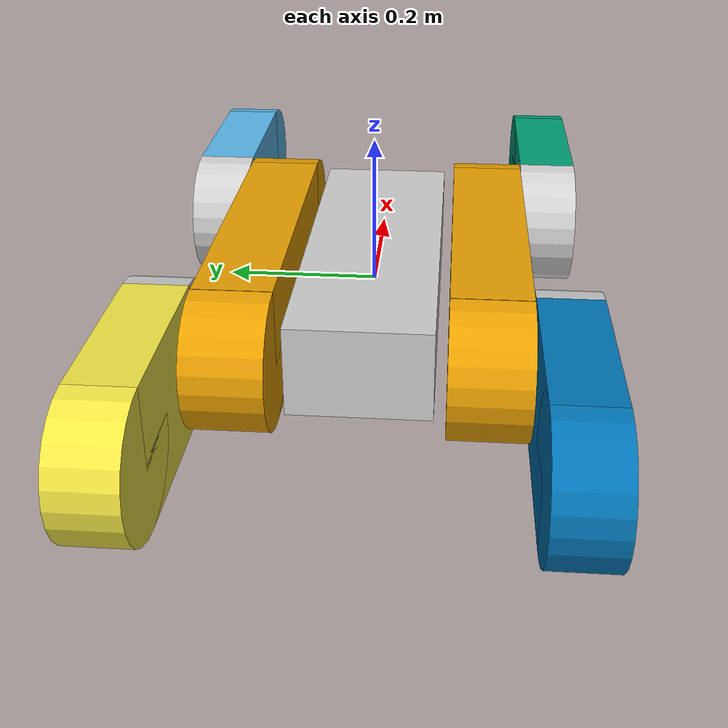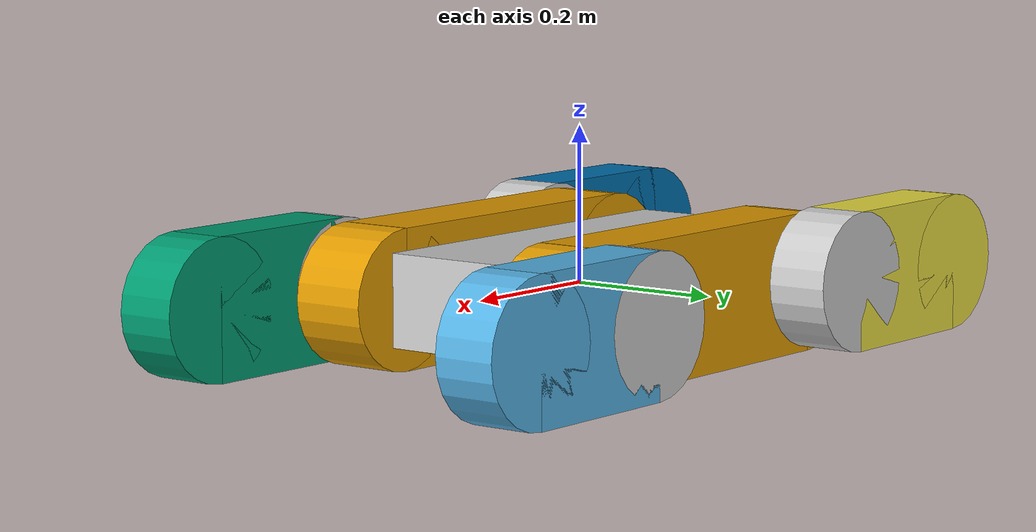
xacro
<?xml version="1.0"?>

<robot name="obelix_ugv" xmlns:xacro="http://ros.org/wiki/xacro">

  <!-- Included URDF Files -->
  <xacro:include filename="$(find hector_tracked_vehicles_description)/urdf/obelix_ugv_base.urdf.xacro" />
  <xacro:obelix_ugv_macro />

  <xacro:include filename="$(find hector_tracked_vehicles_description)/urdf/obelix_2flipper_box.urdf.xacro" />
  <!-- use for 2*2 flippers -->
  <xacro:obelix_flipper_macro parent="base_link" name="front" front="1">
    <origin xyz="${wheel_offset_x}  ${flipper_offset_y}  0 " rpy="0 0 0"/>
  </xacro:obelix_flipper_macro >

  <xacro:obelix_flipper_macro parent="base_link" name="rear" front="-1">
    <origin xyz="${-wheel_offset_x}  ${flipper_offset_y}  0  " rpy="0 0 0"/>
  </xacro:obelix_flipper_macro >

  <gazebo reference="base_link">
    <mu1>0.0</mu1>
    <mu2>0.0</mu2>
    <kp>1000000.0</kp>
    <kd>100.0</kd>
    <minDepth>0.001</minDepth>
    <maxVel>1.0</maxVel>
  </gazebo>

  <gazebo>
    <plugin name="force_based_move_controller" filename="libgazebo_ros_force_based_move.so">
      <commandTopic>/cmd_vel_raw</commandTopic>
      <odometryTopic>odom_raw</odometryTopic>
      <odometryFrame>odom</odometryFrame>
      <odometryRate>20.0</odometryRate>
      <robotBaseFrame>base_link</robotBaseFrame>
      <publishOdometryTf>0</publishOdometryTf>
      <yaw_velocity_p_gain>4000.0</yaw_velocity_p_gain>
      <x_velocity_p_gain>10000.0</x_velocity_p_gain>
      <y_velocity_p_gain>10000.0</y_velocity_p_gain>
    </plugin>

    <!-- ros_control plugin -->
    <plugin name="gazebo_ros_control" filename="libgazebo_ros_control.so">
      <robotNamespace>obelix_robot</robotNamespace>
    </plugin>

    <plugin name="p3d_base_controller" filename="libgazebo_ros_p3d.so">
      <alwaysOn>true</alwaysOn>
      <updateRate>50.0</updateRate>
      <bodyName>base_link</bodyName>
      <topicName>ground_truth/state</topicName>
      <gaussianNoise>0.01</gaussianNoise>
      <frameName>world</frameName>
      <xyzOffsets>0 0 0</xyzOffsets>
      <rpyOffsets>0 0 0</rpyOffsets>
    </plugin>

    <plugin name="imu_controller" filename="libhector_gazebo_ros_imu.so">
      <alwaysOn>true</alwaysOn>
      <updateRate>50.0</updateRate>
      <bodyName>base_link</bodyName>
      <topicName>imu_quat</topicName>
      <accelDrift>0.0 0.0 0.0</accelDrift>
      <accelGaussianNoise>0.1 0.1 0.1</accelGaussianNoise>
      <rateDrift>0.0 0.0 0.0</rateDrift>
      <rateGaussianNoise>0.05 0.05 0.05</rateGaussianNoise>
      <headingDrift>0.0</headingDrift>
      <headingGaussianNoise>0.05</headingGaussianNoise>
    </plugin>
  </gazebo>

</robot>

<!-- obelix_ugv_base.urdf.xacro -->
<robot xmlns:xacro="http://ros.org/wiki/xacro">

  <xacro:include filename="$(find hector_xacro_tools)/urdf/inertia_tensors.urdf.xacro" />
  <xacro:include filename="$(find hector_tracked_vehicles_description)/urdf/tracked_wheel.urdf.xacro" />

  <!-- Properties (Constants) -->
  <xacro:property name="M_PI" value="3.14159"/>

  <xacro:property name="base_link_size_x" value="0.52" />
  <xacro:property name="base_link_size_y" value="0.18" />
  <xacro:property name="base_link_size_z" value="0.118" />

  <xacro:property name="wheel_radius_big" value="0.085" />

  <xacro:property name="wheel_offset_x" value="${base_link_size_x*0.5 - 0.042}" />
  <xacro:property name="wheel_offset_z" value="${base_link_size_z*0.5 - 0.065}" />
  <xacro:property name="wheel_radius"   value="0.09" />

  <xacro:property name="track_width"    value="0.1" />
  <xacro:property name="track_offset_y"    value="0.155" />

  <xacro:property name="flipper_width"    value="0.08" />
  <xacro:property name="flipper_offset_y"    value="0.245" />
  <xacro:property name="flipper_offset_wheel_axis_x"    value="0.225" />

  <xacro:property name="wheel_length" value="0.02" />
  <xacro:property name="wheel_size_y" value="0.0825" />

  <xacro:property name="total_width" value="0.297" />
  <xacro:property name="wheel_offset_y" value="0.1697" />
  <xacro:property name="wheel_offset_z_from_base_link" value="-0.0" />

  <xacro:property name="ground_clearance" value="0.05" />

  <xacro:property name="top_size_x" value="0.3937" />
  <xacro:property name="top_size_y" value="0.3556" />
  <xacro:property name="top_size_z" value="0.0020" />

  <!--
  Note macros below are exact copies of each with expection of the
  visual/collision tags.
  -->

  <xacro:macro name="track_geom_macro_visual" params="offset_y">
    <visual>
      <origin xyz="${wheel_offset_x} ${offset_y} ${wheel_offset_z}" rpy="${M_PI*0.5} 0 0" />
      <geometry>
        <cylinder radius="${wheel_radius}" length="${track_width}" />
      </geometry>
    </visual>
    <visual>
      <origin xyz="${-wheel_offset_x} ${offset_y} ${wheel_offset_z}" rpy="${M_PI*0.5} 0 0" />
      <geometry>
        <cylinder radius="${wheel_radius}" length="${track_width}" />
      </geometry>
    </visual>
    <visual>
      <origin xyz="0.0 ${offset_y} ${wheel_offset_z}" rpy="0 0 0" />
      <geometry>
        <box size="${base_link_size_x - wheel_radius} ${track_width} ${wheel_radius*2}" />
      </geometry>
    </visual>
  </xacro:macro>

  <xacro:macro name="track_geom_macro_collision" params="offset_y">
    <collision>
      <origin xyz="${wheel_offset_x} ${offset_y} ${wheel_offset_z}" rpy="${M_PI*0.5} 0 0" />
      <geometry>
        <cylinder radius="${wheel_radius}" length="${track_width}" />
      </geometry>
    </collision>
    <collision>
      <origin xyz="${-wheel_offset_x} ${offset_y} ${wheel_offset_z}" rpy="${M_PI*0.5} 0 0" />
      <geometry>
        <cylinder radius="${wheel_radius}" length="${track_width}" />
      </geometry>
    </collision>
    <collision>
      <origin xyz="0.0 ${offset_y} ${wheel_offset_z}" rpy="0 0 0" />
      <geometry>
        <box size="${base_link_size_x - wheel_radius} ${track_width} ${wheel_radius*2}" />
      </geometry>
    </collision>
  </xacro:macro>

  <xacro:macro name="obelix_ugv_macro">

    <!-- Links and Joints (i.e., the robot) -->
    <link name="base_link">

      <xacro:inertial_cuboid_with_pose mass="40" x_length="${base_link_size_x}" y_length="${base_link_size_y}" z_length="${base_link_size_z}" >
        <origin xyz="0 0.0 0.0" rpy="0 0 0" />
      </xacro:inertial_cuboid_with_pose>

      <visual>
        <origin xyz="0.0 0.0 0.0" rpy="0 0 0" />
        <geometry>
          <box size="${base_link_size_x} ${base_link_size_y} ${base_link_size_z}" />
        </geometry>
        <geometry>
          <box size="${base_link_size_x} ${base_link_size_y} ${base_link_size_z}" />
        </geometry>

        <material name="Grey" >
          <color rgba="0.8 0.8 0.8 1"/>
        </material>
      </visual>

      <xacro:track_geom_macro_visual offset_y="${ track_offset_y}"/>
      <xacro:track_geom_macro_visual offset_y="${-track_offset_y}"/>

      <collision>
        <origin xyz="0.0 0.0 0.0" rpy="0 0 0" />
        <geometry>
          <box size="${base_link_size_x} ${base_link_size_y} ${base_link_size_z}" />
        </geometry>
        <geometry>
          <box size="${base_link_size_x} ${base_link_size_y} ${base_link_size_z}" />
        </geometry>
      </collision>

      <xacro:track_geom_macro_collision offset_y="${ track_offset_y}"/>
      <xacro:track_geom_macro_collision offset_y="${-track_offset_y}"/>
    </link>

  </xacro:macro>
</robot>

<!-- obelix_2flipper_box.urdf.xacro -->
<robot xmlns:xacro="http://ros.org/wiki/xacro">
  <xacro:property name="flipper_base_mass" value="2.0"/>
  <xacro:property name="flipper_x" value="0.3"/>
  <xacro:property name="flipper_y" value="0.1"/>
  <xacro:property name="flipper_z" value="0.15"/>

  <!--
  Note macros below are exact copies of each with expection of the
  visual/collision tags.
  -->

  <xacro:macro name="flipper_geom_macro_visual" params="front">
    <visual>
      <material name="Grey" >
        <color rgba="0.8 0.8 0.8 1"/>
      </material>
      <origin xyz="0 0 0" rpy="${M_PI*0.5} 0 0" />
      <geometry>
        <cylinder radius="${wheel_radius}" length="${flipper_width}" />
      </geometry>
    </visual>
    <visual>
      <origin xyz="${front*flipper_offset_wheel_axis_x} 0 0" rpy="${M_PI*0.5} 0 0" />
      <geometry>
        <cylinder radius="${wheel_radius}" length="${flipper_width}" />
      </geometry>
    </visual>
    <visual>
      <origin xyz="${front*flipper_offset_wheel_axis_x*0.5} 0 0" rpy="0 0 0" />
      <geometry>
        <box size="${flipper_offset_wheel_axis_x} ${flipper_width} ${wheel_radius*2}" />
      </geometry>
    </visual>
  </xacro:macro>

  <xacro:macro name="flipper_geom_macro_collision" params="front">
    <collision>
      <origin xyz="0 0 0" rpy="${M_PI*0.5} 0 0" />
      <geometry>
        <cylinder radius="${wheel_radius}" length="${flipper_width}" />
      </geometry>
    </collision>
    <collision>
      <origin xyz="${front*flipper_offset_wheel_axis_x} 0 0" rpy="${M_PI*0.5} 0 0" />
      <geometry>
        <cylinder radius="${wheel_radius}" length="${flipper_width}" />
      </geometry>
    </collision>
    <collision>
      <origin xyz="${front*flipper_offset_wheel_axis_x*0.5} 0 0" rpy="0 0 0" />
      <geometry>
        <box size="${flipper_offset_wheel_axis_x} ${flipper_width} ${wheel_radius*2}" />
      </geometry>
    </collision>
  </xacro:macro>

  <xacro:macro name="obelix_flipper_macro" params="parent name front *origin">

    <!-- front is either 1 (for front flipper) or -1 (for back flipper) -->
    <joint name="${name}_flipper_joint" type="revolute">
      <xacro:insert_block name="origin"/>
      <axis xyz="0 1 0"/>
      <limit lower="${-90 * M_PI / 180}" upper="${90 * M_PI / 180}"
             effort="20000" velocity="${1.0 * 110 * M_PI / 180}" />

      <parent link="${parent}"/>
      <child link="left_${name}_flipper_base_link"/>
    </joint>

    <link name="left_${name}_flipper_base_link">
      <origin xyz="0 0 0" rpy="0 0 0" />
      <xacro:inertial_cuboid_with_pose mass="3" x_length="${flipper_offset_wheel_axis_x}" y_length="${flipper_width}" z_length="${wheel_radius*2}" >
        <origin xyz="${front*flipper_offset_wheel_axis_x*0.5} 0 0" rpy="0 0 0" />
      </xacro:inertial_cuboid_with_pose>

      <xacro:flipper_geom_macro_visual front="${front}" />
      <xacro:flipper_geom_macro_collision front="${front}" />

    </link>

    <joint name="right_${name}_flipper_joint" type="fixed">
      <origin xyz="0 ${-2*flipper_offset_y} 0" rpy="0 0 0" />

      <parent link="left_${name}_flipper_base_link"/>
      <child link="right_${name}_flipper_base_link"/>
    </joint>

    <link name="right_${name}_flipper_base_link">
      <origin xyz="0 0 0" rpy="0 0 0" />
      <xacro:inertial_cuboid_with_pose mass="3" x_length="${flipper_offset_wheel_axis_x}" y_length="${flipper_width}" z_length="${wheel_radius*2}" >
        <origin xyz="${front*flipper_offset_wheel_axis_x*0.5} 0 0" rpy="0 0 0" />
      </xacro:inertial_cuboid_with_pose>
      <xacro:flipper_geom_macro_visual front="${front}" />
      <xacro:flipper_geom_macro_collision front="${front}" />
    </link>

    <!--Needed for gazebo-->
    <transmission name="${name}_flipper_joint_transmission">
      <type>transmission_interface/SimpleTransmission</type>
      <joint name="${name}_flipper_joint">
        <hardwareInterface>EffortJointInterface</hardwareInterface>
      </joint>
      <actuator name="${name}_flipper_joint_motor">
        <hardwareInterface>EffortJointInterface</hardwareInterface>
        <mechanicalReduction>1</mechanicalReduction>
      </actuator>
    </transmission>

    <gazebo reference="${name}_left_flipper_base_link">
      <mu1>0</mu1>
      <mu2>0</mu2>
      <kp>1000000.0</kp>
      <kd>100.0</kd>
      <minDepth>0.001</minDepth>
      <maxVel>1.0</maxVel>
      <maxContacts>1</maxContacts>
    </gazebo>

    <gazebo reference="${name}_right_flipper_base_link">
      <mu1>0</mu1>
      <mu2>0</mu2>
      <kp>1000000.0</kp>
      <kd>100.0</kd>
      <minDepth>0.001</minDepth>
      <maxVel>1.0</maxVel>
      <maxContacts>1</maxContacts>
    </gazebo>

  </xacro:macro>
</robot>
